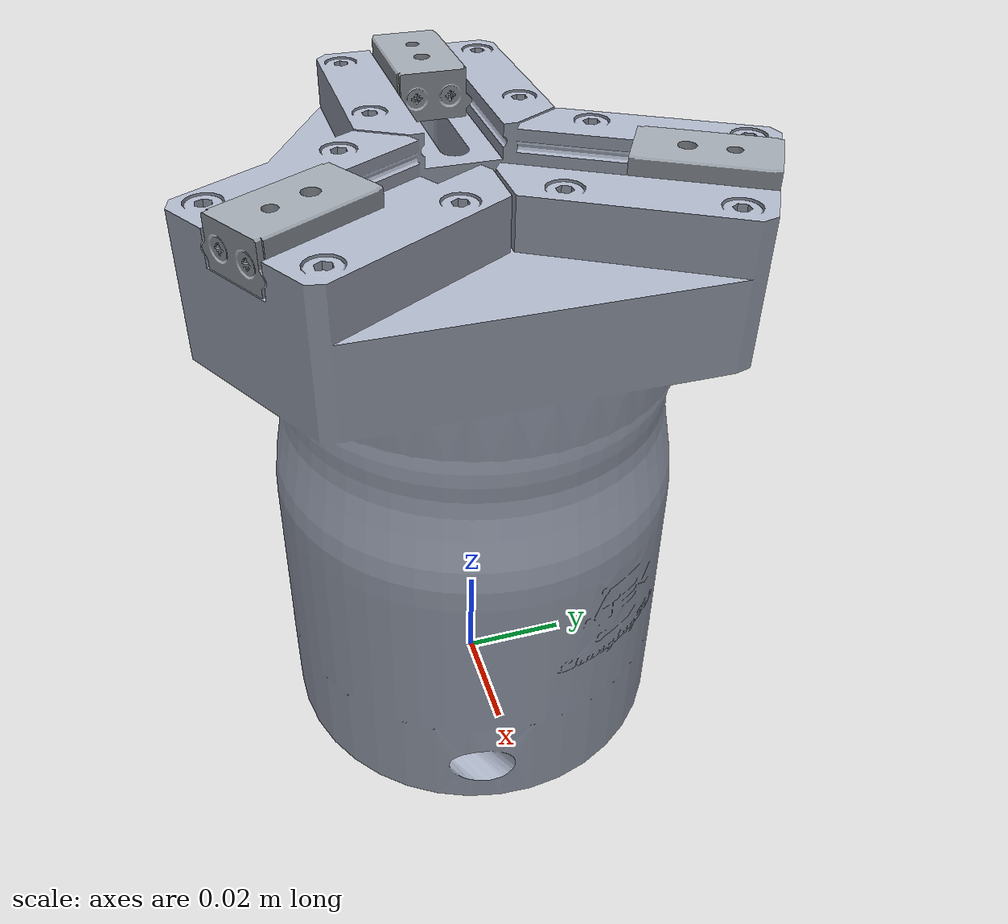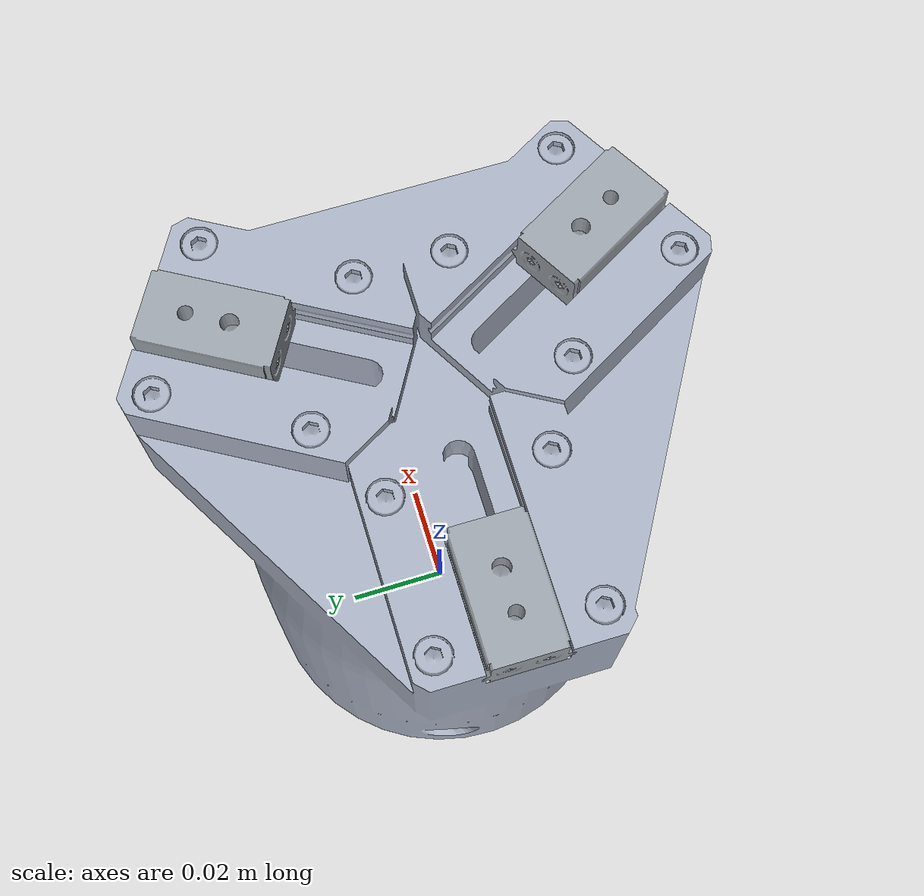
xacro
<?xml version="1.0" encoding="utf-8"?>
<robot
  name="crt_ctpm3f20e_gripper_visualization" xmlns:xacro="http://ros.org/wiki/xacro">
  <link name="world"/>
  <joint name="world_to_base" type="fixed">
    <parent link="world"/>
    <child link="base_link"/>
    <origin xyz="0 0 0.1" rpy="0 0 0"/>
  </joint>
  <link
    name="base_link">
    <inertial>
      <origin
        xyz="2.27144412866413E-05 -0.018537305151962 2.27144412866413E-05"
        rpy="0 0 0" />
      <mass
        value="0.66110522670732" />
      <inertia
        ixx="0.000340520144347979"
        ixy="1.77015051256606E-07"
        ixz="-3.21491606379905E-06"
        iyy="0.000507340758709144"
        iyz="-1.03443756754932E-07"
        izz="0.000336689142317247" />
    </inertial>
    <visual>
      <origin
        xyz="0 0 0"
        rpy="0 0 0" />
      <geometry>
        <mesh
          filename="package://crt_ctpm3f20e_gripper_visualization/meshes/base_link.STL" />
      </geometry>
      <material
        name="">
        <color
          rgba="0.666666666666667 0.698039215686274 0.768627450980392 1" />
      </material>
    </visual>
    <collision>
      <origin
        xyz="0 0 0"
        rpy="0 0 0" />
      <geometry>
        <mesh
          filename="package://crt_ctpm3f20e_gripper_visualization/meshes/base_link.STL" />
      </geometry>
    </collision>
  </link>
  <link
    name="Slide_1_Link">
    <inertial>
      <origin
        xyz="1.04083408558608E-17 -2.1600210825078E-05 0.0110235967884269"
        rpy="0 0 0" />
      <mass
        value="0.0173469729206652" />
      <inertia
        ixx="6.26256675627352E-07"
        ixy="-1.92242851291375E-21"
        ixz="2.07867179212126E-19"
        iyy="7.32887883303786E-07"
        iyz="8.21950215207488E-10"
        izz="3.20085996800568E-07" />
    </inertial>
    <visual>
      <origin
        xyz="0 0 0"
        rpy="0 0 0" />
      <geometry>
        <mesh
          filename="package://crt_ctpm3f20e_gripper_visualization/meshes/Slide_1_Link.STL" />
      </geometry>
      <material
        name="">
        <color
          rgba="0.615686274509804 0.643137254901961 0.674509803921569 1" />
      </material>
    </visual>
    <collision>
      <origin
        xyz="0 0 0"
        rpy="0 0 0" />
      <geometry>
        <mesh
          filename="package://crt_ctpm3f20e_gripper_visualization/meshes/Slide_1_Link.STL" />
      </geometry>
    </collision>
  </link>
  <joint
    name="Slide_1_Joint"
    type="prismatic">
    <origin
      xyz="0.02325 0.04027 0.01547"
      rpy="1.5708 0 -0.5236" />
    <parent
      link="base_link" />
    <child
      link="Slide_1_Link" />
    <axis
      xyz="0 0 -1" />
    <limit
      lower="-0.02"
      upper="0"
      effort="1"
      velocity="1" />
  </joint>
  <link
    name="Slide_2_Link">
    <inertial>
      <origin
        xyz="1.56125112837913E-17 -2.16002108240007E-05 0.0110235967884269"
        rpy="0 0 0" />
      <mass
        value="0.0173469729206652" />
      <inertia
        ixx="6.26256675627351E-07"
        ixy="-1.92997653600331E-21"
        ixz="-2.07999528110134E-19"
        iyy="7.32887883303784E-07"
        iyz="8.21950215207522E-10"
        izz="3.20085996800567E-07" />
    </inertial>
    <visual>
      <origin
        xyz="0 0 0"
        rpy="0 0 0" />
      <geometry>
        <mesh
          filename="package://crt_ctpm3f20e_gripper_visualization/meshes/Slide_2_Link.STL" />
      </geometry>
      <material
        name="">
        <color
          rgba="0.615686274509804 0.643137254901961 0.674509803921569 1" />
      </material>
    </visual>
    <collision>
      <origin
        xyz="0 0 0"
        rpy="0 0 0" />
      <geometry>
        <mesh
          filename="package://crt_ctpm3f20e_gripper_visualization/meshes/Slide_2_Link.STL" />
      </geometry>
    </collision>
  </link>
  <joint
    name="Slide_2_Joint"
    type="prismatic">
    <origin
      xyz="0.02325 -0.04027 0.01547"
      rpy="1.5708 0 -2.618" />
    <parent
      link="base_link" />
    <child
      link="Slide_2_Link" />
    <axis
      xyz="0 0 -1" />
    <limit
      lower="-0.02"
      upper="0"
      effort="1"
      velocity="1" />
    <mimic
      joint="Slide_1_Joint"
      multiplier="1"
      offset="0" />
  </joint>
  <link
    name="Slide_3_Link">
    <inertial>
      <origin
        xyz="-3.18849779485504E-17 -2.16002108397329E-05 0.0110235967884255"
        rpy="0 0 0" />
      <mass
        value="0.0173469729217247" />
      <inertia
        ixx="6.26256675628034E-07"
        ixy="-1.92315692782449E-21"
        ixz="1.25325103592209E-21"
        iyy="7.32887883304453E-07"
        iyz="8.21950215207494E-10"
        izz="3.20085996800567E-07" />
    </inertial>
    <visual>
      <origin
        xyz="0 0 0"
        rpy="0 0 0" />
      <geometry>
        <mesh
          filename="package://crt_ctpm3f20e_gripper_visualization/meshes/Slide_3_Link.STL" />
      </geometry>
      <material
        name="">
        <color
          rgba="0.615686274509804 0.643137254901961 0.674509803921569 1" />
      </material>
    </visual>
    <collision>
      <origin
        xyz="0 0 0"
        rpy="0 0 0" />
      <geometry>
        <mesh
          filename="package://crt_ctpm3f20e_gripper_visualization/meshes/Slide_3_Link.STL" />
      </geometry>
    </collision>
  </link>
  <joint
    name="Slide_3_Joint"
    type="prismatic">
    <origin
      xyz="-0.0465 0 0.01547"
      rpy="1.5708 0 1.5708" />
    <parent
      link="base_link" />
    <child
      link="Slide_3_Link" />
    <axis
      xyz="0 0 1" />
    <limit
      lower="0"
      upper="0.02"
      effort="1"
      velocity="1" />
    <mimic
      joint="Slide_1_Joint"
      multiplier="-1"
      offset="0" />
  </joint>
</robot>
